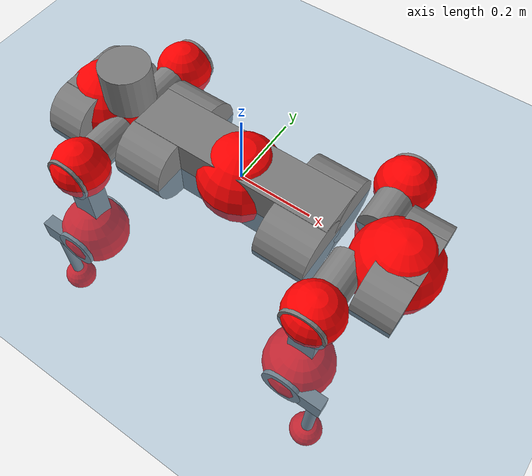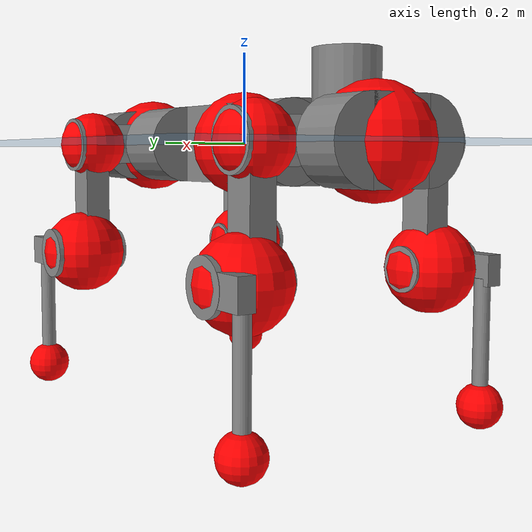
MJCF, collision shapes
<mujoco model="anymal_c">
  <compiler angle="radian" assetdir="assets" balanceinertia="true" inertiafromgeom="false"/>

  <option timestep="0.005" density="1.2" viscosity="2e-05"/>

  <size nkey="1"/>

  <visual>
    <quality shadowsize="8192"/>
    <map shadowclip="0.5"/>
  </visual>

  <default>
    <default class="/">
      <material specular="0" shininess="0.25"/>
      <geom contype="0" conaffinity="0" group="1" solref="-1000 -80"/>
      <site size="0.01 0.005 0.005" group="5"/>
      <general forcelimited="true" forcerange="-80 80" biastype="affine" gainprm="80" biasprm="0 -80 -2"/>
      <default class="anymal_c">
        <joint armature="0.01" damping="0.01" frictionloss="0.1"/>
        <default class="visual">
          <geom type="mesh" group="2"/>
          <default class="visual_zflip"/>
        </default>
        <default class="collision">
          <geom type="cylinder" group="3"/>
          <default class="foot">
            <geom size="0.03 0 0" type="sphere" condim="6" priority="1" friction="0.8 0.02 0.01" solimp="0.015 1 0.03"/>
          </default>
        </default>
      </default>
      <default class="reward_collision_sphere">
        <geom group="5" rgba="1 0 0 1"/>
      </default>
    </default>
  </default>

  <asset>
    <texture type="skybox" colorspace="auto" name="//unnamed_texture_0" builtin="gradient" rgb1="0.95 0.95 0.95" rgb2="0.95 0.95 0.95" width="100" height="600"/>
    <texture type="2d" colorspace="auto" name="texplane" builtin="checker" rgb1="0.345 0.575 0.748" rgb2="0.345 0.575 0.748" markrgb="1 1 1" width="512" height="512"/>
    <texture type="2d" colorspace="linear" name="base" file="base.png"/>
    <texture type="2d" colorspace="linear" name="top_shell" file="top_shell.png"/>
    <texture type="2d" colorspace="linear" name="bottom_shell" file="bottom_shell.png"/>
    <texture type="2d" colorspace="linear" name="remote" file="remote.png"/>
    <texture type="2d" colorspace="linear" name="hatch" file="hatch.png"/>
    <texture type="2d" colorspace="linear" name="handle" file="handle.png"/>
    <texture type="2d" colorspace="linear" name="face" file="face.png"/>
    <texture type="2d" colorspace="linear" name="battery" file="battery.png"/>
    <texture type="2d" colorspace="linear" name="lidar_cage" file="lidar_cage.png"/>
    <texture type="2d" colorspace="linear" name="depth_camera" file="depth_camera.png"/>
    <texture type="2d" colorspace="linear" name="wide_angle_camera" file="wide_angle_camera.png"/>
    <texture type="2d" colorspace="linear" name="lidar" file="lidar.png"/>
    <texture type="2d" colorspace="linear" name="drive" file="drive.png"/>
    <texture type="2d" colorspace="linear" name="hip_l" file="hip_l.png"/>
    <texture type="2d" colorspace="linear" name="shank_l" file="shank_l.png"/>
    <texture type="2d" colorspace="linear" name="foot" file="foot.png"/>
    <texture type="2d" colorspace="linear" name="thigh" file="thigh.png"/>
    <texture type="2d" colorspace="linear" name="shank_r" file="shank_r.png"/>
    <texture type="2d" colorspace="linear" name="hip_r" file="hip_r.png"/>
    <material name="MatPlane" class="/" texture="texplane" texuniform="true" texrepeat="2 2" specular="0.9" shininess="0.5"/>
    <material name="black_plastic" class="/" rgba="0.007 0.007 0.007 1"/>
    <material name="green" class="/" rgba="0.052 0.178 0.033 1"/>
    <material name="red" class="/" rgba="0.178 0.006 0.005 1"/>
    <material name="yellow" class="/" rgba="0.178 0.119 0.006 1"/>
    <material name="lwl" class="/" rgba="0.8 0.8 0.8 1"/>
    <material name="base" class="/" texture="base"/>
    <material name="top_shell" class="/" texture="top_shell"/>
    <material name="bottom_shell" class="/" texture="bottom_shell"/>
    <material name="hip_l" class="/" texture="hip_l"/>
    <material name="thigh" class="/" texture="thigh"/>
    <material name="shank_l" class="/" texture="shank_l"/>
    <material name="foot" class="/" texture="foot"/>
    <material name="hip_r" class="/" texture="hip_r"/>
    <material name="shank" class="/" texture="shank_r"/>
    <material name="hatch" class="/" texture="hatch"/>
    <material name="remote" class="/" texture="remote"/>
    <material name="handle" class="/" texture="handle"/>
    <material name="face" class="/" texture="face"/>
    <material name="depth_camera" class="/" texture="depth_camera"/>
    <material name="wide_angle_camera" class="/" texture="wide_angle_camera"/>
    <material name="battery" class="/" texture="battery"/>
    <material name="lidar_cage" class="/" texture="lidar_cage"/>
    <material name="lidar" class="/" texture="lidar"/>
    <material name="drive" class="/" texture="drive"/>
    <mesh name="base_0" class="/" file="base_0.obj"/>
    <mesh name="base_1" class="/" file="base_1.obj"/>
    <mesh name="base_2" class="/" file="base_2.obj"/>
    <mesh name="base_3" class="/" file="base_3.obj"/>
    <mesh name="base_4" class="/" file="base_4.obj"/>
    <mesh name="base_5" class="/" file="base_5.obj"/>
    <mesh name="top_shell" class="/" file="top_shell.obj"/>
    <mesh name="bottom_shell" class="/" file="bottom_shell.obj"/>
    <mesh name="remote" class="/" file="remote.obj"/>
    <mesh name="handle" class="/" file="handle.obj"/>
    <mesh name="face" class="/" file="face.obj"/>
    <mesh name="wide_angle_camera" class="/" file="wide_angle_camera.obj"/>
    <mesh name="depth_camera" class="/" file="depth_camera.obj"/>
    <mesh name="battery" class="/" file="battery.obj"/>
    <mesh name="lidar_cage" class="/" file="lidar_cage.obj"/>
    <mesh name="lidar" class="/" file="lidar.obj"/>
    <mesh name="drive" class="/" file="drive.obj"/>
    <mesh name="hip_l" class="/" file="hip_l.obj"/>
    <mesh name="thigh" class="/" file="thigh.obj"/>
    <mesh name="shank_l" class="/" file="shank_l.obj"/>
    <mesh name="foot" class="/" file="foot.obj"/>
    <mesh name="hip_r" class="/" file="hip_r.obj"/>
    <mesh name="hatch" class="/" file="hatch.obj"/>
    <mesh name="shank_r" class="/" file="shank_r.obj"/>
  </asset>

  <worldbody>
    <geom name="floor" class="/" size="100 100 0.125" type="plane" group="0" material="MatPlane"/>
    <light name="toplight_shadow" class="/" pos="0 0 5" dir="0.0990148 0.0990148 -0.990148" type="directional" ambient="0.04 0.04 0.04" diffuse="0.55 0.55 0.55" specular="0.12 0.12 0.12"/>
    <light name="toplight_fill" class="/" pos="0 0 5" dir="0.0990148 0.0990148 -0.990148" type="directional" castshadow="false" ambient="0.04 0.04 0.04" diffuse="0.3 0.3 0.3" specular="0.08 0.08 0.08"/>
    <body name="trunk" childclass="anymal_c" pos="-0.00012325 0.0001905 3.90447e-05" quat="1 -0.000112807 8.2166e-05 -0.000288943">
      <inertial pos="0.00140667 0.00163211 0.0393525" quat="0.498277 0.497324 0.502204 0.502175" mass="16.1327" diaginertia="0.524532 0.630485 0.12482"/>
      <joint name="//unnamed_joint_0" type="free" armature="0" damping="0" frictionloss="0"/>
      <geom name="//unnamed_geom_1" class="visual" material="green" mesh="base_0"/>
      <geom name="//unnamed_geom_2" class="visual" material="yellow" mesh="base_1"/>
      <geom name="//unnamed_geom_3" class="visual" material="red" mesh="base_2"/>
      <geom name="//unnamed_geom_4" class="visual" material="black_plastic" mesh="base_3"/>
      <geom name="//unnamed_geom_5" class="visual" material="lwl" mesh="base_4"/>
      <geom name="//unnamed_geom_6" class="visual" material="base" mesh="base_5"/>
      <geom name="trunk_1" class="collision" size="0.277104 0.0668872 0.0859978" type="box"/>
      <geom name="trunk_2" class="collision" size="0.0859978 0.069276" pos="0.209221 0.070428 0" quat="0.707107 0 0.707107 0"/>
      <geom name="trunk_3" class="collision" size="0.0859978 0.069276" pos="-0.209221 0.070428 0" quat="0.707107 0 0.707107 0"/>
      <geom name="trunk_4" class="collision" size="0.0859978 0.069276" pos="0.209221 -0.070428 0" quat="0.707107 0 0.707107 0"/>
      <geom name="trunk_5" class="collision" size="0.0859978 0.069276" pos="-0.209221 -0.070428 0" quat="0.707107 0 0.707107 0"/>
      <geom name="//unnamed_geom_12" class="visual" material="top_shell" mesh="top_shell"/>
      <geom name="//unnamed_geom_13" class="visual" material="bottom_shell" mesh="bottom_shell"/>
      <geom name="//unnamed_geom_14" class="visual" material="remote" mesh="remote"/>
      <geom name="//unnamed_geom_15" class="visual" material="handle" mesh="handle"/>
      <geom name="//unnamed_geom_16" class="visual" pos="0.398722 0 0" quat="1 0 0 0" material="face" mesh="face"/>
      <geom name="trunk_6" class="collision" size="0.0525542 0.0668872 0.0859978" pos="0.451628 0 0" type="box"/>
      <geom name="//unnamed_geom_18" class="collision" size="0.0859978 0.0525542" pos="0.451628 0.070428 0" quat="0.707107 0 0.707107 0"/>
      <geom name="//unnamed_geom_19" class="collision" size="0.0859978 0.0525542" pos="0.451628 -0.070428 0" quat="0.707107 0 0.707107 0"/>
      <geom name="//unnamed_geom_20" class="visual" pos="0.444075 0 -0.0257557" quat="0.965926 0 0.258819 0" material="depth_camera" mesh="depth_camera"/>
      <geom name="//unnamed_geom_21" class="visual" pos="0.493473 0 0.0134512" material="wide_angle_camera" mesh="wide_angle_camera"/>
      <geom name="//unnamed_geom_22" class="visual_zflip" pos="-0.398722 0 0" quat="0 0 0 1" material="face" mesh="face"/>
      <geom name="trunk_7" class="collision" size="0.0525542 0.0668872 0.0859978" pos="-0.451628 0 0" quat="0 0 0 1" type="box"/>
      <geom name="//unnamed_geom_24" class="collision" size="0.0859978 0.0525542" pos="-0.451628 -0.070428 0" quat="0 -0.707107 0 0.707107"/>
      <geom name="//unnamed_geom_25" class="collision" size="0.0859978 0.0525542" pos="-0.451628 0.070428 0" quat="0 -0.707107 0 0.707107"/>
      <geom name="//unnamed_geom_26" class="visual" pos="-0.444075 0 -0.0257557" quat="0 -0.258819 0 0.965926" material="depth_camera" mesh="depth_camera"/>
      <geom name="//unnamed_geom_27" class="visual_zflip" pos="-0.493473 0 0.0134512" quat="0 0 0 1" material="wide_angle_camera" mesh="wide_angle_camera"/>
      <geom name="//unnamed_geom_28" class="visual" material="battery" mesh="battery"/>
      <geom name="//unnamed_geom_29" class="visual" pos="0 0.0775046 0.0265845" quat="0.683013 -0.183013 0.183013 0.683013" material="depth_camera" mesh="depth_camera"/>
      <geom name="//unnamed_geom_30" class="visual" pos="0 -0.0775046 0.0265845" quat="0.683013 0.183013 0.183013 -0.683013" material="depth_camera" mesh="depth_camera"/>
      <geom name="//unnamed_geom_31" class="visual" pos="-0.350144 0 0.066043" quat="1 0 0 0" material="lidar_cage" mesh="lidar_cage"/>
      <geom name="trunk_8" class="collision" size="0.0668872 0.0573319" pos="-0.350144 0 0.119956"/>
      <geom name="//unnamed_geom_33" class="visual" pos="-0.350144 1.73568e-05 0.127773" quat="0.707107 0 0 -0.707107" material="lidar" mesh="lidar"/>
      <geom name="//unnamed_geom_34" class="visual" pos="0.288484 0.104598 1.85559e-09" quat="0.258819 0.965926 0 0" material="drive" mesh="drive"/>
      <geom name="//unnamed_geom_35" class="visual" pos="0.288484 -0.104598 -1.85559e-09" quat="0.258819 -0.965926 0 0" material="drive" mesh="drive"/>
      <geom name="//unnamed_geom_36" class="visual" pos="-0.288484 0.104598 -1.85559e-09" quat="0 0 0.965926 -0.258819" material="drive" mesh="drive"/>
      <geom name="//unnamed_geom_37" class="visual" pos="-0.288484 -0.104598 1.85559e-09" quat="0 0 -0.965926 -0.258819" material="drive" mesh="drive"/>
      <geom name="//unnamed_geom_38" class="visual" pos="0.111584 0 0.0655937" quat="1 0 0 0" material="hatch" mesh="hatch"/>
      <geom name="//unnamed_geom_39" class="reward_collision_sphere" size="0.114664"/>
      <geom name="//unnamed_geom_40" class="reward_collision_sphere" size="0.114664" pos="0.432871 0 0"/>
      <geom name="//unnamed_geom_41" class="reward_collision_sphere" size="0.114664" pos="-0.432871 0 0"/>
      <site name="imu" pos="0.243541 0.0221827 0.0316804" size="0.00955531"/>
      <camera name="track" pos="0 -2.01223 0" quat="0.707107 0.707107 0 0" mode="trackcom"/>
      <camera name="ego_camera" pos="0.432871 0 -0.0359418" quat="-0.5 -0.5 0.5 0.5"/>
      <body name="LF_HIP" pos="0.288148 0.107878 0.00249887" quat="0.258717 0.965953 3.74233e-05 0.000256925">
        <inertial pos="0.0535654 -0.015273 -0.0074181" quat="-0.127922 0.709451 -0.135851 0.679602" mass="2.34011" diaginertia="0.00478661 0.00477607 0.00186244"/>
        <joint name="LF_HAA" pos="0 0 0" axis="0.999983 -0.000843384 0.00583812" range="-0.711918 0.545583" armature="0.00957566" damping="0" frictionloss="0.108945"/>
        <geom name="//unnamed_geom_42" class="visual" pos="0 0.000109156 -1.79287e-05" quat="0.258819 -0.965926 0 0" material="hip_l" mesh="hip_l"/>
        <geom name="//unnamed_geom_43" class="visual" pos="0.0576199 -0.0703622 -0.039828" quat="0.183013 -0.683013 0.683013 0.183013" material="drive" mesh="drive"/>
        <geom name="//unnamed_geom_44" class="collision" size="0.0477766 0.0668872" pos="0.0576199 -0.0120329 -0.00620445" quat="-0.353553 -0.612372 0.612372 -0.353553"/>
        <body name="LF_THIGH" pos="0.0560349 -0.0709316 -0.0370705" quat="0.183457 -0.68302 0.682944 0.182796">
          <inertial pos="0.0296893 -0.000255965 -0.219675" quat="0.993155 -0.0159422 -0.0804435 0.0831759" mass="2.67927" diaginertia="0.0248184 0.0302923 0.00235634"/>
          <joint name="LF_HFE" pos="0 0 0" axis="0.999999 -3.71204e-05 0.00115573" range="-3.20083 3.13775" armature="0.0085837" damping="0.019312" frictionloss="0.0962086"/>
          <geom name="//unnamed_geom_45" class="visual" pos="-0.00087899 -1.38508e-06 0" quat="0.707107 0 0 -0.707107" material="thigh" mesh="thigh"/>
          <geom name="//unnamed_geom_46" class="collision" size="0.0621095 0.0382212" pos="0.0384774 0 0" quat="0.5 0.5 -0.5 -0.5"/>
          <geom name="//unnamed_geom_47" class="collision" size="0.0358324 0.0286659 0.13503" pos="0.028858 0 -0.126977" quat="0.707107 0 0 -0.707107" type="box"/>
          <geom name="//unnamed_geom_48" class="visual" pos="0.0964821 0 -0.256085" quat="1 0 0 0" material="drive" mesh="drive"/>
          <geom name="//unnamed_geom_49" class="collision" size="0.0477766 0.0668872" pos="0.0291466 0 -0.256085" quat="0.707107 0 0.707107 0"/>
          <geom name="//unnamed_geom_50" class="reward_collision_sphere" size="0.0764425" pos="0.0240484 0 0"/>
          <body name="LF_SHANK" pos="0.0986125 -3.78975e-05 -0.256973" quat="1 0.000120857 -9.60587e-05 7.14476e-05">
            <inertial pos="0.00614028 -0.0620369 -0.0721848" quat="0.993364 -0.112618 -0.00397613 -0.0230086" mass="0.518828" diaginertia="0.00838865 0.0095764 0.000662683"/>
            <joint name="LF_KFE" pos="0 0 0" axis="0.999968 0.00729876 0.00325424" range="-3.12602 3.19461" armature="0.00887492" damping="0.00366185" frictionloss="0.0940289"/>
            <geom name="//unnamed_geom_51" class="visual" pos="-0.000286619 -0.00152827 0" quat="0.707107 0 0 -0.707107" material="shank_l" mesh="shank_l"/>
            <geom name="LF_kfe_act" class="collision" size="0.0573319 0.0191106" pos="0.0192387 0 0" quat="0.5 0.5 -0.5 -0.5"/>
            <geom name="//unnamed_geom_53" class="collision" size="0.0549421 0.0322492 0.0181551" pos="0.0192387 -0.0578505 0" quat="0.5 0.5 -0.5 -0.5" type="box"/>
            <geom name="//unnamed_geom_54" class="visual" pos="0.0125533 -0.0889802 -0.303681" quat="0.382683 0 0 -0.92388" material="foot" mesh="foot"/>
            <geom name="LF_calf" class="collision" size="0.0167218 0.134971" pos="0.0125532 -0.0884877 -0.151841" quat="0.707107 0 0 -0.707107"/>
            <geom name="LF_foot" class="foot" size="0.0290463" pos="0.0125532 -0.0884877 -0.283464" quat="0.707107 0 0 -0.707107"/>
            <geom name="//unnamed_geom_57" class="reward_collision_sphere" size="0.0955531" pos="-0.0480967 0 0"/>
            <geom name="//unnamed_geom_58" class="reward_collision_sphere" size="0.0477766" pos="0.0125532 -0.0884877 -0.283464"/>
            <site name="LF_foot" class="foot" pos="0.0125532 -0.0884877 -0.283464" quat="0.707107 0 0 -0.707107" size="0.00955531"/>
          </body>
        </body>
      </body>
      <body name="RF_HIP" pos="0.286251 -0.103691 0.00270045" quat="0.258747 -0.965945 0.000326339 -4.70948e-05">
        <inertial pos="0.0520302 0.0159072 -0.00788442" quat="0.136012 0.67906 0.127393 0.710035" mass="2.3557" diaginertia="0.00473485 0.00498446 0.0018782"/>
        <joint name="RF_HAA" pos="0 0 0" axis="0.999932 0.00962941 0.00654079" range="-0.492861 0.668387" armature="0.0102794" damping="0" frictionloss="0.107997"/>
        <geom name="//unnamed_geom_59" class="visual" pos="0 -0.000109155 -1.79287e-05" quat="0.258819 0.965926 0 0" material="hip_r" mesh="hip_r"/>
        <geom name="//unnamed_geom_60" class="visual" pos="0.0576199 0.0703622 -0.039828" quat="0.183013 0.683013 0.683013 -0.183013" material="drive" mesh="drive"/>
        <geom name="//unnamed_geom_61" class="collision" size="0.0477766 0.0668872" pos="0.0576199 0.0120329 -0.00620445" quat="-0.353553 0.612372 0.612372 0.353553"/>
        <body name="RF_THIGH" pos="0.0570654 0.0703197 -0.03936" quat="0.182131 0.683129 0.683261 -0.182533">
          <inertial pos="0.0269588 -0.000229454 -0.222242" quat="0.992104 -0.000352824 -0.0887323 0.0886358" mass="2.74222" diaginertia="0.0245527 0.0300656 0.00252934"/>
          <joint name="RF_HFE" pos="0 0 0" axis="0.999991 0.00103962 -0.00402833" stiffness="0.00668578" range="-3.14109 3.08297" armature="0.00813998" damping="0.0153709" frictionloss="0.0863835"/>
          <geom name="//unnamed_geom_62" class="visual" pos="-0.00087899 -1.38508e-06 0" quat="0.707107 0 0 -0.707107" material="thigh" mesh="thigh"/>
          <geom name="//unnamed_geom_63" class="collision" size="0.0621095 0.0382212" pos="0.0384774 0 0" quat="0.5 0.5 0.5 0.5"/>
          <geom name="//unnamed_geom_64" class="collision" size="0.0358324 0.0286659 0.13503" pos="0.028858 0 -0.126977" quat="0.707107 0 0 0.707107" type="box"/>
          <geom name="//unnamed_geom_65" class="visual" pos="0.0964821 0 -0.256085" quat="1 0 0 0" material="drive" mesh="drive"/>
          <geom name="//unnamed_geom_66" class="collision" size="0.0477766 0.0668872" pos="0.0291466 0 -0.256085" quat="0.707107 0 0.707107 0"/>
          <geom name="//unnamed_geom_67" class="reward_collision_sphere" size="0.0764425" pos="0.0240484 0 0"/>
          <body name="RF_SHANK" pos="0.0958848 0.00141217 -0.256291" quat="1 -0.000328829 -0.000298575 0.000301669">
            <inertial pos="0.00407365 0.0607977 -0.070349" quat="0.993092 0.115047 -0.00189388 0.0229816" mass="0.505902" diaginertia="0.00838712 0.00957744 0.000627754"/>
            <joint name="RF_KFE" pos="0 0 0" axis="0.999989 -0.00363672 0.0031061" range="-3.14324 3.13828" armature="0.00941557" damping="0" frictionloss="0.0821336"/>
            <geom name="//unnamed_geom_68" class="visual" pos="-0.000286618 0.00152827 0" quat="0.707107 0 0 0.707107" material="shank" mesh="shank_r"/>
            <geom name="RF_kfe_act" class="collision" size="0.0573319 0.0191106" pos="0.0192387 0 0" quat="0.5 0.5 0.5 0.5"/>
            <geom name="//unnamed_geom_70" class="collision" size="0.0549421 0.0322492 0.0181551" pos="0.0192387 0.0578505 0" quat="0.5 0.5 0.5 0.5" type="box"/>
            <geom name="//unnamed_geom_71" class="visual" pos="0.0125532 0.0889802 -0.303681" quat="0.382683 0 0 0.92388" material="foot" mesh="foot"/>
            <geom name="RF_calf" class="collision" size="0.0167218 0.134971" pos="0.0125532 0.0884877 -0.151841" quat="0.707107 0 0 0.707107"/>
            <geom name="RF_foot" class="foot" size="0.0276207" pos="0.0125532 0.0884877 -0.283464" quat="0.707107 0 0 0.707107"/>
            <geom name="//unnamed_geom_74" class="reward_collision_sphere" size="0.0955531" pos="-0.0480967 0 0"/>
            <geom name="//unnamed_geom_75" class="reward_collision_sphere" size="0.0477766" pos="0.0125532 0.0884877 -0.283464"/>
            <site name="RF_foot" class="foot" pos="0.0125532 0.0884877 -0.283464" quat="0.707107 0 0 0.707107" size="0.00955531"/>
          </body>
        </body>
      </body>
      <body name="LH_HIP" pos="-0.288348 0.102651 0.00262621" quat="0.000472438 0.000786864 0.966181 -0.257862">
        <inertial pos="0.052584 0.0143294 -0.00738489" quat="0.14645 0.673874 0.125672 0.713199" mass="2.35333" diaginertia="0.00449543 0.00505751 0.00181308"/>
        <joint name="LH_HAA" pos="0 0 0" axis="0.999975 -0.0033631 0.00621251" range="-0.517623 0.73653" armature="0.0102671" damping="0" frictionloss="0.0931746"/>
        <geom name="//unnamed_geom_76" class="visual" pos="0 -0.000109155 -1.79287e-05" quat="-0.258819 -0.965926 0 0" material="hip_r" mesh="hip_r"/>
        <geom name="//unnamed_geom_77" class="visual" pos="0.0576199 0.0703622 -0.039828" quat="0.183013 0.683013 0.683013 -0.183013" material="drive" mesh="drive"/>
        <geom name="//unnamed_geom_78" class="collision" size="0.0477766 0.0668872" pos="0.0576199 0.0120329 -0.00620445" quat="-0.353553 0.612372 0.612372 0.353553"/>
        <body name="LH_THIGH" pos="0.0575996 0.0716429 -0.0397631" quat="0.183232 0.683831 0.682237 -0.18263">
          <inertial pos="0.0290919 -0.00234215 -0.220169" quat="0.992827 -0.00526995 -0.0806047 0.0881481" mass="2.68059" diaginertia="0.0248121 0.0305133 0.00249641"/>
          <joint name="LH_HFE" pos="0 0 0" axis="1 0.000716567 0.000132656" stiffness="0.0112891" range="-3.19414 3.12037" armature="0.00909076" damping="0.0117343" frictionloss="0.108762"/>
          <geom name="//unnamed_geom_79" class="visual" pos="-0.00087899 -1.38508e-06 0" quat="0.707107 0 0 -0.707107" material="thigh" mesh="thigh"/>
          <geom name="//unnamed_geom_80" class="collision" size="0.0621095 0.0382212" pos="0.0384774 0 0" quat="0.5 0.5 -0.5 -0.5"/>
          <geom name="//unnamed_geom_81" class="collision" size="0.0358324 0.0286659 0.13503" pos="0.028858 0 -0.126977" quat="0.707107 0 0 -0.707107" type="box"/>
          <geom name="//unnamed_geom_82" class="visual" pos="0.0964821 0 -0.256085" quat="1 0 0 0" material="drive" mesh="drive"/>
          <geom name="//unnamed_geom_83" class="collision" size="0.0477766 0.0668872" pos="0.0291466 0 -0.256085" quat="0.707107 0 0.707107 0"/>
          <geom name="//unnamed_geom_84" class="reward_collision_sphere" size="0.0764425" pos="0.0240484 0 0"/>
          <body name="LH_SHANK" pos="0.0940646 -0.00197488 -0.256571" quat="0.999999 0.000221825 -0.000683968 -0.000712686">
            <inertial pos="0.00509867 0.063951 -0.0721291" quat="0.993173 0.113113 0.00103146 0.0284919" mass="0.492" diaginertia="0.00816614 0.00891874 0.000657826"/>
            <joint name="LH_KFE" pos="0 0 0" axis="0.999984 0.00374644 0.0041753" range="-3.13898 3.15692" armature="0.00994971" damping="0.0108602" frictionloss="0.0932016"/>
            <geom name="//unnamed_geom_85" class="visual" pos="-0.000286618 0.00152827 0" quat="-0.707107 0 0 -0.707107" material="shank" mesh="shank_r"/>
            <geom name="LH_kfe_act" class="collision" size="0.0573319 0.0191106" pos="0.0192387 0 0" quat="0.5 0.5 -0.5 -0.5"/>
            <geom name="//unnamed_geom_87" class="collision" size="0.0549421 0.0322492 0.0181551" pos="0.0192387 0.0578505 0" quat="0.5 0.5 -0.5 -0.5" type="box"/>
            <geom name="//unnamed_geom_88" class="visual" pos="0.0125532 0.0889802 -0.303681" quat="-0.382683 0 0 -0.92388" material="foot" mesh="foot"/>
            <geom name="LH_calf" class="collision" size="0.0167218 0.134971" pos="0.0125532 0.0884877 -0.151841" quat="0.707107 0 0 -0.707107"/>
            <geom name="LH_foot" class="foot" size="0.0318972" pos="0.0125532 0.0884877 -0.283464" quat="0.707107 0 0 -0.707107"/>
            <geom name="//unnamed_geom_91" class="reward_collision_sphere" size="0.0955531" pos="-0.0480967 0 0"/>
            <geom name="//unnamed_geom_92" class="reward_collision_sphere" size="0.0477766" pos="0.0125532 0.0884877 -0.283464"/>
            <site name="LH_foot" class="foot" pos="0.0125532 0.0884877 -0.283464" quat="0.707107 0 0 -0.707107" size="0.00955531"/>
          </body>
        </body>
      </body>
      <body name="RH_HIP" pos="-0.289136 -0.105082 0.00134868" quat="2.59081e-06 -1.43103e-05 -0.965915 -0.258859">
        <inertial pos="0.0526979 -0.0181613 -0.0075182" quat="-0.128587 0.707695 -0.132975 0.681873" mass="2.45305" diaginertia="0.00484817 0.0050176 0.001994"/>
        <joint name="RH_HAA" pos="0 0 0" axis="0.999992 0.00115275 0.00386388" range="-0.781021 0.497319" armature="0.00954812" damping="0.0112274" frictionloss="0.092413"/>
        <geom name="//unnamed_geom_93" class="visual" pos="0 0.000109156 -1.79287e-05" quat="-0.258819 0.965926 0 0" material="hip_l" mesh="hip_l"/>
        <geom name="//unnamed_geom_94" class="visual" pos="0.0576199 -0.0703622 -0.039828" quat="-0.183013 0.683013 -0.683013 -0.183013" material="drive" mesh="drive"/>
        <geom name="//unnamed_geom_95" class="collision" size="0.0477766 0.0668872" pos="0.0576199 -0.0120329 -0.00620445" quat="0.353553 0.612372 -0.612372 0.353553"/>
        <body name="RH_THIGH" pos="0.05778 -0.0720012 -0.0393068" quat="-0.183162 0.683138 -0.682902 -0.182811">
          <inertial pos="0.0326464 -0.00290052 -0.221836" quat="0.991661 -0.00212171 -0.0882709 0.0938756" mass="2.62287" diaginertia="0.0246747 0.0300986 0.00242742"/>
          <joint name="RH_HFE" pos="0 0 0" axis="0.999919 0.0093959 -0.00860765" range="-3.15251 3.10301" armature="0.00948616" damping="0" frictionloss="0.087361"/>
          <geom name="//unnamed_geom_96" class="visual" pos="-0.00087899 -1.38508e-06 0" quat="0.707107 0 0 -0.707107" material="thigh" mesh="thigh"/>
          <geom name="//unnamed_geom_97" class="collision" size="0.0621095 0.0382212" pos="0.0384774 0 0" quat="0.5 0.5 0.5 0.5"/>
          <geom name="//unnamed_geom_98" class="collision" size="0.0358324 0.0286659 0.13503" pos="0.028858 0 -0.126977" quat="0.707107 0 0 0.707107" type="box"/>
          <geom name="//unnamed_geom_99" class="visual" pos="0.0964821 0 -0.256085" quat="1 0 0 0" material="drive" mesh="drive"/>
          <geom name="//unnamed_geom_100" class="collision" size="0.0477766 0.0668872" pos="0.0291466 0 -0.256085" quat="0.707107 0 0.707107 0"/>
          <geom name="//unnamed_geom_101" class="reward_collision_sphere" size="0.0764425" pos="0.0240484 0 0"/>
          <body name="RH_SHANK" pos="0.0964313 0.00250885 -0.257599" quat="1 4.63519e-06 0.000338195 0.000252288">
            <inertial pos="0.0076934 -0.0611534 -0.0721289" quat="0.992496 -0.11983 -0.00126759 -0.0242964" mass="0.524809" diaginertia="0.00860831 0.0101932 0.000672706"/>
            <joint name="RH_KFE" pos="0 0 0" axis="0.999997 -0.000520466 0.0022948" range="-3.10674 3.10562" armature="0.0095362" damping="0.00202128" frictionloss="0.0868342"/>
            <geom name="//unnamed_geom_102" class="visual" pos="-0.000286619 -0.00152827 0" quat="0.707107 0 0 -0.707107" material="shank_l" mesh="shank_l"/>
            <geom name="RH_kfe_act" class="collision" size="0.0573319 0.0191106" pos="0.0192387 0 0" quat="0.5 0.5 0.5 0.5"/>
            <geom name="//unnamed_geom_104" class="collision" size="0.0549421 0.0322492 0.0181551" pos="0.0192387 -0.0578505 0" quat="0.5 0.5 0.5 0.5" type="box"/>
            <geom name="//unnamed_geom_105" class="visual" pos="0.0125533 -0.0889802 -0.303681" quat="0.382683 0 0 -0.92388" material="foot" mesh="foot"/>
            <geom name="RH_calf" class="collision" size="0.0167218 0.134971" pos="0.0125532 -0.0884877 -0.151841" quat="0.707107 0 0 0.707107"/>
            <geom name="RH_foot" class="foot" size="0.0225928" pos="0.0125532 -0.0884877 -0.283464" quat="0.707107 0 0 0.707107"/>
            <geom name="//unnamed_geom_108" class="reward_collision_sphere" size="0.0955531" pos="-0.0480967 0 0"/>
            <geom name="//unnamed_geom_109" class="reward_collision_sphere" size="0.0477766" pos="0.0125532 -0.0884877 -0.283464"/>
            <site name="RH_foot" class="foot" pos="0.0125532 -0.0884877 -0.283464" quat="0.707107 0 0 0.707107" size="0.00955531"/>
          </body>
        </body>
      </body>
    </body>
  </worldbody>

  <contact>
    <pair class="/" geom1="floor" geom2="LF_foot" name="//unnamed_contact_0"/>
    <pair class="/" geom1="floor" geom2="RF_foot" name="//unnamed_contact_1"/>
    <pair class="/" geom1="floor" geom2="LH_foot" name="//unnamed_contact_2"/>
    <pair class="/" geom1="floor" geom2="RH_foot" name="//unnamed_contact_3"/>
  </contact>

  <actuator>
    <general name="LF_HAA" class="/" joint="LF_HAA" forcerange="-77.3832 77.3832" gainprm="77.5159" biasprm="0 -77.5159 -1.85989"/>
    <general name="LF_HFE" class="/" joint="LF_HFE" forcerange="-79.6729 79.6729" gainprm="77.5159" biasprm="0 -77.5159 -1.85989"/>
    <general name="LF_KFE" class="/" joint="LF_KFE" forcerange="-84.5708 84.5708" gainprm="77.5159" biasprm="0 -77.5159 -1.85989"/>
    <general name="RF_HAA" class="/" joint="RF_HAA" forcerange="-76.3637 76.3637" gainprm="77.5159" biasprm="0 -77.5159 -1.85989"/>
    <general name="RF_HFE" class="/" joint="RF_HFE" forcerange="-86.4758 86.4758" gainprm="77.5159" biasprm="0 -77.5159 -1.85989"/>
    <general name="RF_KFE" class="/" joint="RF_KFE" forcerange="-77.0493 77.0493" gainprm="77.5159" biasprm="0 -77.5159 -1.85989"/>
    <general name="LH_HAA" class="/" joint="LH_HAA" forcerange="-77.7657 77.7657" gainprm="77.5159" biasprm="0 -77.5159 -1.85989"/>
    <general name="LH_HFE" class="/" joint="LH_HFE" forcerange="-76.3655 76.3655" gainprm="77.5159" biasprm="0 -77.5159 -1.85989"/>
    <general name="LH_KFE" class="/" joint="LH_KFE" forcerange="-79.3992 79.3992" gainprm="77.5159" biasprm="0 -77.5159 -1.85989"/>
    <general name="RH_HAA" class="/" joint="RH_HAA" forcerange="-76.4386 76.4386" gainprm="77.5159" biasprm="0 -77.5159 -1.85989"/>
    <general name="RH_HFE" class="/" joint="RH_HFE" forcerange="-70.4164 70.4164" gainprm="77.5159" biasprm="0 -77.5159 -1.85989"/>
    <general name="RH_KFE" class="/" joint="RH_KFE" forcerange="-84.5702 84.5702" gainprm="77.5159" biasprm="0 -77.5159 -1.85989"/>
  </actuator>

  <sensor>
    <gyro site="imu" name="imu_angular_velocity"/>
    <velocimeter site="imu" name="imu_linear_velocity"/>
    <framelinvel objtype="site" objname="LF_foot" name="LF_foot_global_linear_velocity"/>
    <framelinvel objtype="site" objname="RF_foot" name="RF_foot_global_linear_velocity"/>
    <framelinvel objtype="site" objname="LH_foot" name="LH_foot_global_linear_velocity"/>
    <framelinvel objtype="site" objname="RH_foot" name="RH_foot_global_linear_velocity"/>
  </sensor>

  <keyframe>
    <key name="home" qpos="0 0 0.55 1 0 0 0 0 0.4 -0.8 0 -0.4 0.8 0 -0.4 0.8 0 0.4 -0.8"/>
  </keyframe>
</mujoco>
